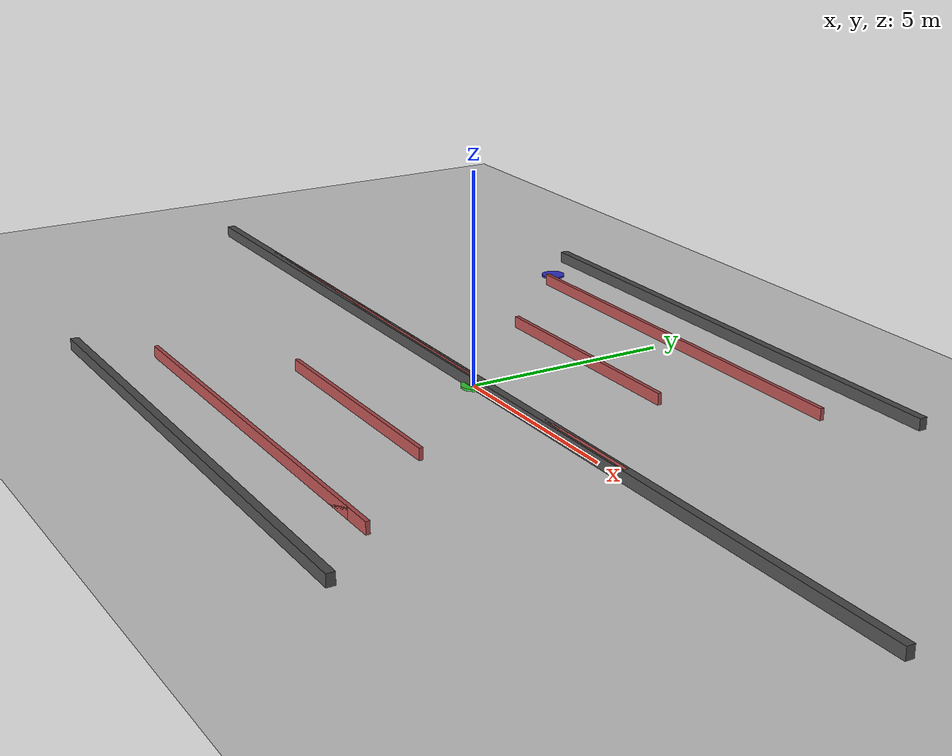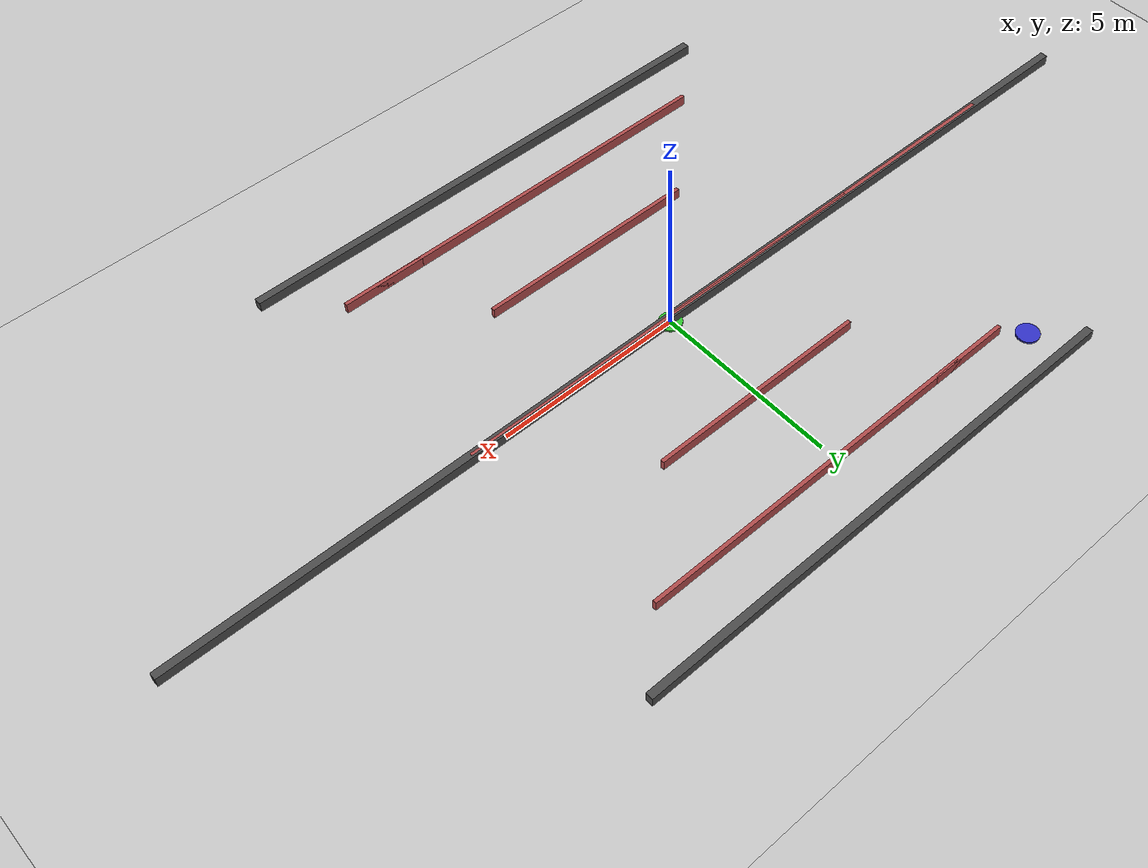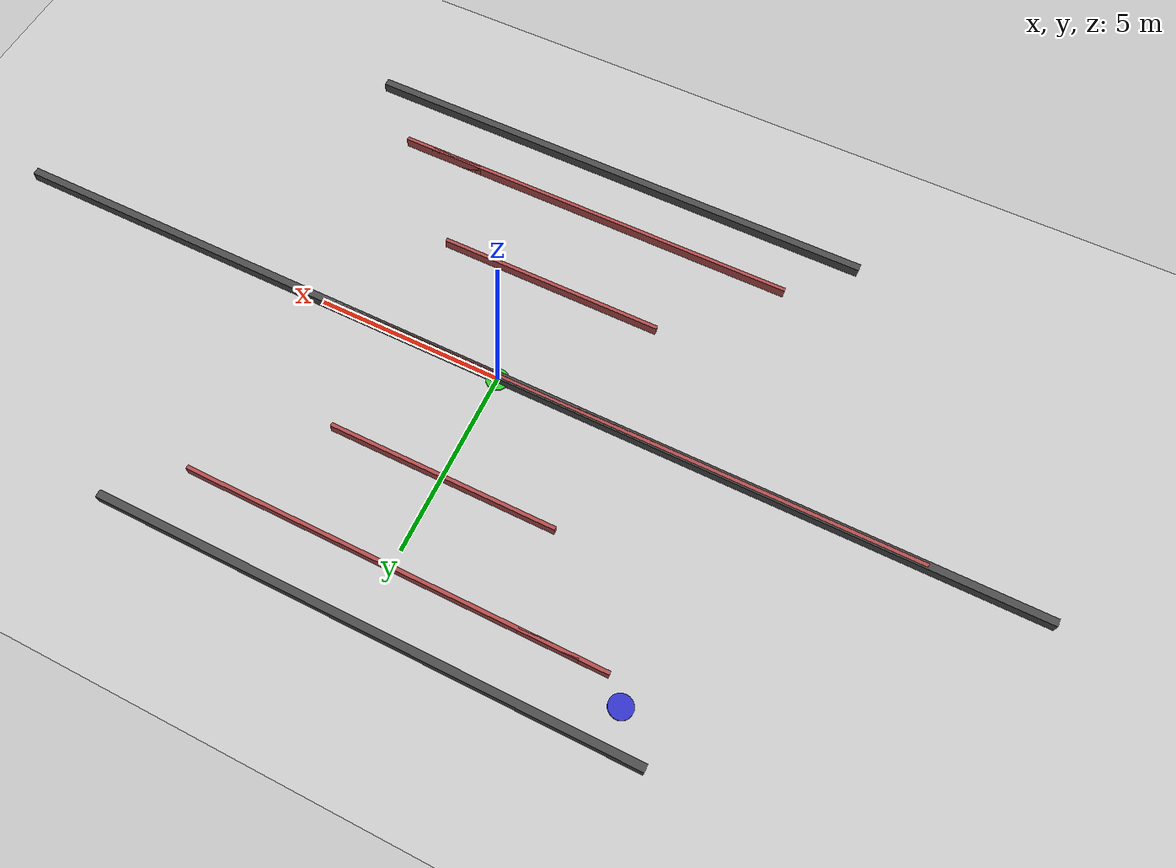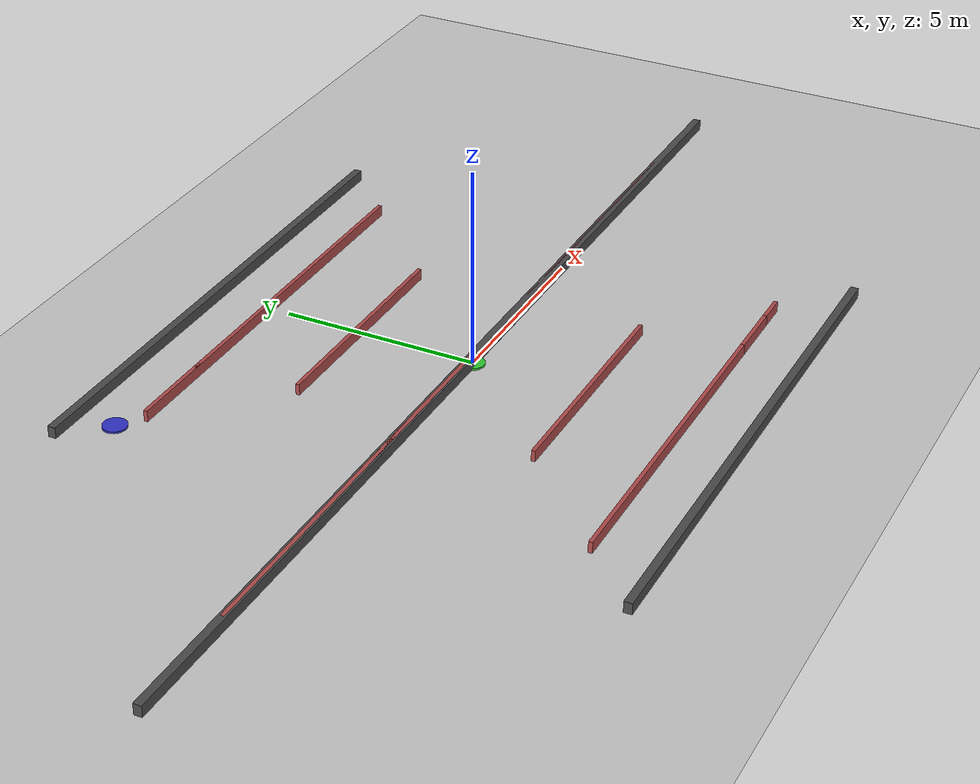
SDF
<?xml version="1.0" ?>
<sdf version="1.6">
  <world name="maze">
    <physics type="ode">
      <max_step_size>0.001</max_step_size>
      <real_time_factor>1</real_time_factor>
    </physics>
    <include>
      <uri>model://sun</uri>
    </include>
    <include>
      <uri>model://ground_plane</uri>
    </include>
    <model name="wall_north">
      <pose>0 7.0 0.0 0 0 0</pose>
      <static>true</static>
      <link name="link">
        <collision name="collision">
          <geometry>
            <box>
              <size>14.0 0.2 0.5</size>
            </box>
          </geometry>
        </collision>
        <visual name="visual">
          <geometry>
            <box>
              <size>14.0 0.2 0.5</size>
            </box>
          </geometry>
          <material>
            <diffuse>0.3 0.3 0.3 1</diffuse>
          </material>
        </visual>
      </link>
    </model>
    <model name="wall_south">
      <pose>0 -7.0 0.0 0 0 0</pose>
      <static>true</static>
      <link name="link">
        <collision name="collision">
          <geometry>
            <box>
              <size>14.0 0.2 0.5</size>
            </box>
          </geometry>
        </collision>
        <visual name="visual">
          <geometry>
            <box>
              <size>14.0 0.2 0.5</size>
            </box>
          </geometry>
          <material>
            <diffuse>0.3 0.3 0.3 1</diffuse>
          </material>
        </visual>
      </link>
    </model>
    <model name="wall_east">
      <pose>7.0 0 0.0 0 0 1.57</pose>
      <static>true</static>
      <link name="link">
        <collision name="collision">
          <geometry>
            <box>
              <size>0.2 14.0 0.5</size>
            </box>
          </geometry>
        </collision>
        <visual name="visual">
          <geometry>
            <box>
              <size>0.2 14.0 0.5</size>
            </box>
          </geometry>
          <material>
            <diffuse>0.3 0.3 0.3 1</diffuse>
          </material>
        </visual>
      </link>
    </model>
    <model name="wall_west">
      <pose>-7.0 0 0.0 0 0 1.57</pose>
      <static>true</static>
      <link name="link">
        <collision name="collision">
          <geometry>
            <box>
              <size>0.2 14.0 0.5</size>
            </box>
          </geometry>
        </collision>
        <visual name="visual">
          <geometry>
            <box>
              <size>0.2 14.0 0.5</size>
            </box>
          </geometry>
          <material>
            <diffuse>0.3 0.3 0.3 1</diffuse>
          </material>
        </visual>
      </link>
    </model>
    <model name="wall_4">
      <pose>0.0 5.5 0.0 0 0 0</pose>
      <static>true</static>
      <link name="link">
        <collision name="collision">
          <geometry>
            <box>
              <size>11.0 0.1 0.5</size>
            </box>
          </geometry>
        </collision>
        <visual name="visual">
          <geometry>
            <box>
              <size>11.0 0.1 0.5</size>
            </box>
          </geometry>
          <material>
            <diffuse>0.7 0.3 0.3 1</diffuse>
          </material>
        </visual>
      </link>
    </model>
    <model name="wall_5">
      <pose>5.5 0.0 0.0 0 0 1.57</pose>
      <static>true</static>
      <link name="link">
        <collision name="collision">
          <geometry>
            <box>
              <size>0.1 11.0 0.5</size>
            </box>
          </geometry>
        </collision>
        <visual name="visual">
          <geometry>
            <box>
              <size>0.1 11.0 0.5</size>
            </box>
          </geometry>
          <material>
            <diffuse>0.7 0.3 0.3 1</diffuse>
          </material>
        </visual>
      </link>
    </model>
    <model name="wall_6">
      <pose>0.0 -5.5 0.0 0 0 0</pose>
      <static>true</static>
      <link name="link">
        <collision name="collision">
          <geometry>
            <box>
              <size>11.0 0.1 0.5</size>
            </box>
          </geometry>
        </collision>
        <visual name="visual">
          <geometry>
            <box>
              <size>11.0 0.1 0.5</size>
            </box>
          </geometry>
          <material>
            <diffuse>0.7 0.3 0.3 1</diffuse>
          </material>
        </visual>
      </link>
    </model>
    <model name="wall_7">
      <pose>-5.5 0.0 0.0 0 0 1.57</pose>
      <static>true</static>
      <link name="link">
        <collision name="collision">
          <geometry>
            <box>
              <size>0.1 11.0 0.5</size>
            </box>
          </geometry>
        </collision>
        <visual name="visual">
          <geometry>
            <box>
              <size>0.1 11.0 0.5</size>
            </box>
          </geometry>
          <material>
            <diffuse>0.7 0.3 0.3 1</diffuse>
          </material>
        </visual>
      </link>
    </model>
    <model name="wall_8">
      <pose>0.0 3.0 0.0 0 0 0</pose>
      <static>true</static>
      <link name="link">
        <collision name="collision">
          <geometry>
            <box>
              <size>6.0 0.1 0.5</size>
            </box>
          </geometry>
        </collision>
        <visual name="visual">
          <geometry>
            <box>
              <size>6.0 0.1 0.5</size>
            </box>
          </geometry>
          <material>
            <diffuse>0.7 0.3 0.3 1</diffuse>
          </material>
        </visual>
      </link>
    </model>
    <model name="wall_9">
      <pose>3.0 0.0 0.0 0 0 1.57</pose>
      <static>true</static>
      <link name="link">
        <collision name="collision">
          <geometry>
            <box>
              <size>0.1 6.0 0.5</size>
            </box>
          </geometry>
        </collision>
        <visual name="visual">
          <geometry>
            <box>
              <size>0.1 6.0 0.5</size>
            </box>
          </geometry>
          <material>
            <diffuse>0.7 0.3 0.3 1</diffuse>
          </material>
        </visual>
      </link>
    </model>
    <model name="wall_10">
      <pose>0.0 -3.0 0.0 0 0 0</pose>
      <static>true</static>
      <link name="link">
        <collision name="collision">
          <geometry>
            <box>
              <size>6.0 0.1 0.5</size>
            </box>
          </geometry>
        </collision>
        <visual name="visual">
          <geometry>
            <box>
              <size>6.0 0.1 0.5</size>
            </box>
          </geometry>
          <material>
            <diffuse>0.7 0.3 0.3 1</diffuse>
          </material>
        </visual>
      </link>
    </model>
    <model name="wall_11">
      <pose>-3.0 0.0 0.0 0 0 1.57</pose>
      <static>true</static>
      <link name="link">
        <collision name="collision">
          <geometry>
            <box>
              <size>0.1 6.0 0.5</size>
            </box>
          </geometry>
        </collision>
        <visual name="visual">
          <geometry>
            <box>
              <size>0.1 6.0 0.5</size>
            </box>
          </geometry>
          <material>
            <diffuse>0.7 0.3 0.3 1</diffuse>
          </material>
        </visual>
      </link>
    </model>
    <model name="wall_12">
      <pose>-4.0 5.5 0.0 0 0 0</pose>
      <static>true</static>
      <link name="link">
        <collision name="collision">
          <geometry>
            <box>
              <size>1.5 0.1 0.5</size>
            </box>
          </geometry>
        </collision>
        <visual name="visual">
          <geometry>
            <box>
              <size>1.5 0.1 0.5</size>
            </box>
          </geometry>
          <material>
            <diffuse>0.7 0.3 0.3 1</diffuse>
          </material>
        </visual>
      </link>
    </model>
    <model name="wall_13">
      <pose>4.0 -5.5 0.0 0 0 0</pose>
      <static>true</static>
      <link name="link">
        <collision name="collision">
          <geometry>
            <box>
              <size>1.5 0.1 0.5</size>
            </box>
          </geometry>
        </collision>
        <visual name="visual">
          <geometry>
            <box>
              <size>1.5 0.1 0.5</size>
            </box>
          </geometry>
          <material>
            <diffuse>0.7 0.3 0.3 1</diffuse>
          </material>
        </visual>
      </link>
    </model>
    <model name="start">
      <pose>-6.0 6.0 0.0 0 0 0</pose>
      <static>true</static>
      <link name="link">
        <collision name="collision">
          <geometry>
            <cylinder>
              <radius>0.3</radius>
              <length>0.05</length>
            </cylinder>
          </geometry>
        </collision>
        <visual name="visual">
          <geometry>
            <cylinder>
              <radius>0.3</radius>
              <length>0.05</length>
            </cylinder>
          </geometry>
          <material>
            <diffuse>0.2 0.2 0.8 1</diffuse>
          </material>
        </visual>
      </link>
    </model>
    <model name="goal">
      <pose>0.0 0.0 0.0 0 0 0</pose>
      <static>true</static>
      <link name="link">
        <collision name="collision">
          <geometry>
            <cylinder>
              <radius>0.3</radius>
              <length>0.05</length>
            </cylinder>
          </geometry>
        </collision>
        <visual name="visual">
          <geometry>
            <cylinder>
              <radius>0.3</radius>
              <length>0.05</length>
            </cylinder>
          </geometry>
          <material>
            <diffuse>0.2 0.8 0.2 1</diffuse>
          </material>
        </visual>
      </link>
    </model>
  </world>
</sdf>
